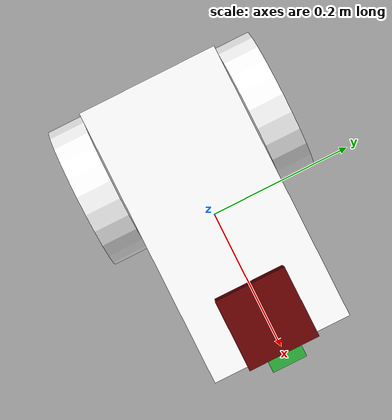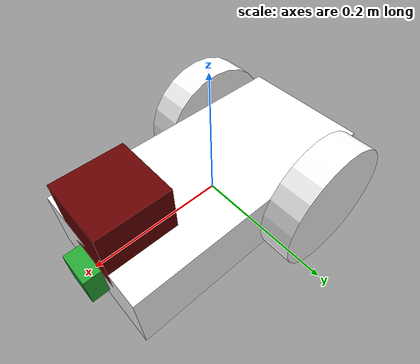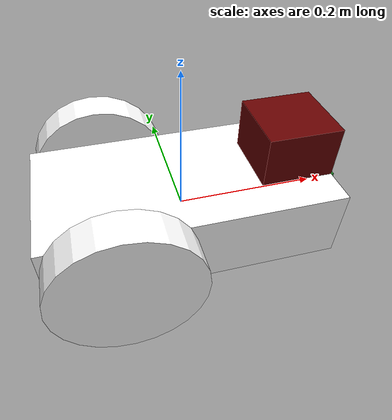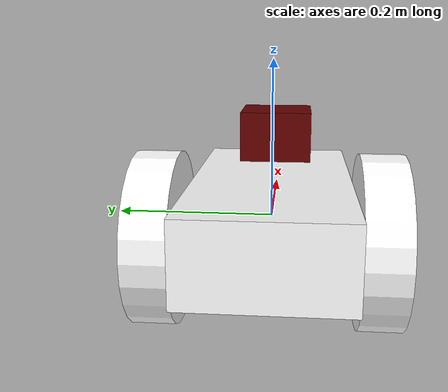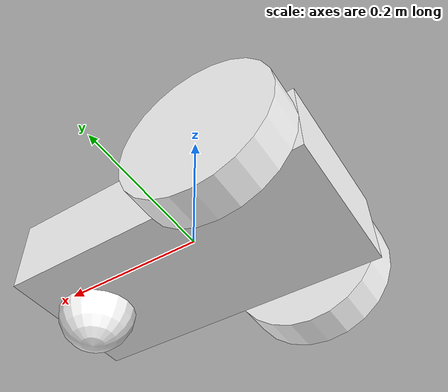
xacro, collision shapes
<?xml version='1.0'?>

<robot name="my_robot" xmlns:xacro="http://www.ros.org/wiki/xacro">
  <xacro:include filename="$(find my_robot)/urdf/my_robot.gazebo" />
  <link name="robot_footprint"></link>

  <joint name="robot_footprint_joint" type="fixed">
    <origin xyz="0 0 0" rpy="0 0 0" />
    <parent link="robot_footprint"/>
    <child link="chassis" />
  </joint>

  <link name='chassis'>
    <pose>0 0 0.1 0 0 0</pose>

    <inertial>
      <mass value="15.0"/>
      <origin xyz="0.0 0 0" rpy=" 0 0 0"/>
      <inertia
          ixx="0.1" ixy="0" ixz="0"
          iyy="0.1" iyz="0"
          izz="0.1"
      />
    </inertial>

    <collision name='collision'>
      <origin xyz="0 0 0" rpy=" 0 0 0"/>
      <geometry>
        <box size=".4 .2 .1"/>
      </geometry>
    </collision>

    <visual name='chassis_visual'>
      <origin xyz="0 0 0" rpy=" 0 0 0"/>
      <geometry>
        <box size=".4 .2 .1"/>
      </geometry>
    </visual>

    <collision name='left_wheel_collision'>
      <origin xyz="-0.1 0.125 0" rpy=" 0 1.5705 1.5705"/>
      <geometry>
        <cylinder radius="0.1" length="0.05"/>
      </geometry>
    </collision>

    <visual name='left_wheel_visual'>
      <origin xyz="-0.1 0.125 0" rpy=" 0 1.5705 1.5705"/>
      <geometry>
        <cylinder radius="0.1" length="0.05"/>
      </geometry>
      <material name="white">
        <color rgba="1.0 1.0 1.0 1.0"/>
      </material>
    </visual>

    <collision name='right_wheel_collision'>
      <origin xyz="-0.1 -0.125 0" rpy=" 0 1.5705 1.5705"/>
      <geometry>
        <cylinder radius="0.1" length="0.05"/>
      </geometry>
    </collision>

    <visual name='right_wheel_visual'>
      <origin xyz="-0.1 -0.125 0" rpy=" 0 1.5705 1.5705"/>
      <geometry>
        <cylinder radius="0.1" length="0.05"/>
      </geometry>
    </visual>

    <inertial>
      <origin xyz="0.0 0.0 0.0" rpy="0.0 1.5707 1.5707"/>
      <mass value="5.0"/>
      <inertia ixx="0.1" ixy="0.0" ixz="0.0" iyy="0.1" iyz="0.0" izz="0.1"/>
    </inertial>

    <collision name='front_caster_collision'>
      <origin xyz="0.15 0 -0.05" rpy=" 0 0 0"/>
      <geometry>
        <sphere radius="0.0499"/>
      </geometry>
    </collision>

    <visual name='front_caster_visual'>
      <origin xyz="0.15 0 -0.05" rpy=" 0 0 0"/>
      <geometry>
        <sphere radius="0.05"/>
      </geometry>
    </visual>

    <inertial>
      <origin xyz="0.0 0.0 0.0" rpy="0.0 1.5707 1.5707"/>
      <mass value="5.0"/>
      <inertia ixx="0.1" ixy="0.0" ixz="0.0" iyy="0.1" iyz="0.0" izz="0.1"/>
    </inertial>

<joint name="left_wheel_hinge" type="continuous">
  <origin xyz="-0.1 0.125 0.0" rpy="0.0 0.0 0.0"/>
  <parent link="chassis"/>
  <child link="left_wheel"/>
  <axis xyz="0.0 1 0.0"/>
  <limit effort="10000" velocity="1000"/>
  <dynamics damping="1.0" friction="1.0"/>
</joint>

<joint name="right_wheel_hinge" type="continuous">
  <origin xyz="-0.1 -0.125 0.0" rpy="0.0 0.0 0.0"/>
  <parent link="chassis"/>
  <child link="right_wheel"/>
  <axis xyz="0.0 1 0.0"/>
  <limit effort="10000" velocity="1000"/>
  <dynamics damping="1.0" friction="1.0"/>
</joint>

  </link>

<link name="camera">
      <inertial>
        <origin xyz="0.0 0.0 0.0" rpy="0.0 0.0 0.0"/>
        <mass value="0.1"/>
        <inertia ixx="1e-6" ixy="0.0" ixz="0.0" iyy="1e-6" iyz="0.0" izz="1e-6"/>
      </inertial>
      <visual name="">
        <origin xyz="0.0 0.0 0.0" rpy="0.0 0.0 0.0"/>
        <geometry>
          <box size="0.05 0.05 0.05"/>
        </geometry>

      </visual>
      <collision>
        <origin xyz="0.0 0.0 0.0" rpy="0.0 0.0 0.0"/>
        <geometry>
          <box size="0.05 0.05 0.05"/>
        </geometry>
      </collision>
      <gazebo reference="camera">
          <material>Gazebo/Green</material>
      </gazebo>
    </link>

<joint name="camera_joint" type="fixed">
  <origin xyz="0.2 0.0 0.0" rpy="0.0 0.0 0.0"/>
  <parent link="chassis"/>
  <child link="camera"/>
  <axis xyz="0.0 1 0.0"/>
</joint>

<link name="hokuyo">
      <inertial>
        <origin xyz="0.0 0.0 0.0" rpy="0.0 0.0 0.0"/>
        <mass value="0.1"/>
        <inertia ixx="1e-6" ixy="0.0" ixz="0.0" iyy="1e-6" iyz="0.0" izz="1e-6"/>
      </inertial>
      <visual name="hokuyo_visual">
        <origin xyz="0.0 0.0 0.0" rpy="0.0 0.0 0.0"/>
        <geometry>
          <mesh filename="package://my_robot/meshes/hokuyo.dae"/>
        </geometry>
        <material name="blue">
          <color rgba="100.0 0.0 0.0 1.0"/>
        </material>
      </visual>
      <collision>
        <origin xyz="0.0 0.0 0.0" rpy="0.0 0.0 0.0"/>
        <geometry>
          <box size="0.1 0.1 0.1"/>
        </geometry>
      </collision>
    </link>

<joint name="hokuyo_joint" type="fixed">
  <origin xyz="0.15 0.0 0.07" rpy="0.0 0.0 0.0"/>
  <parent link="chassis"/>
  <child link="hokuyo"/>
  <axis xyz="0.0 1 0.0"/>
</joint>

</robot>
